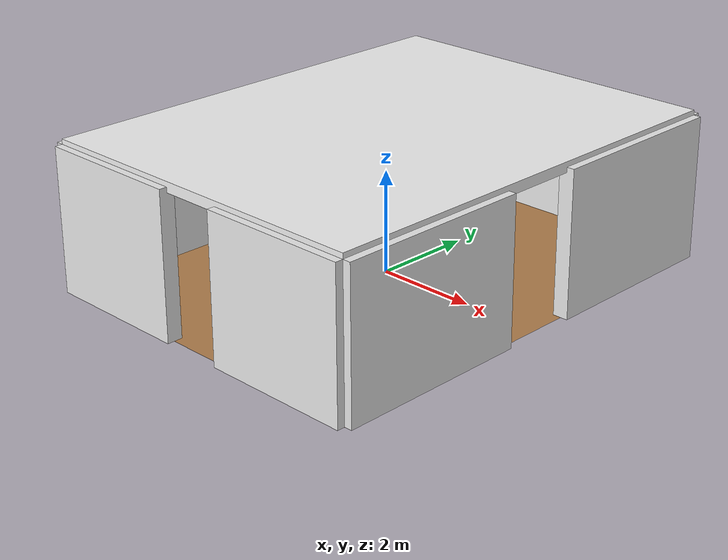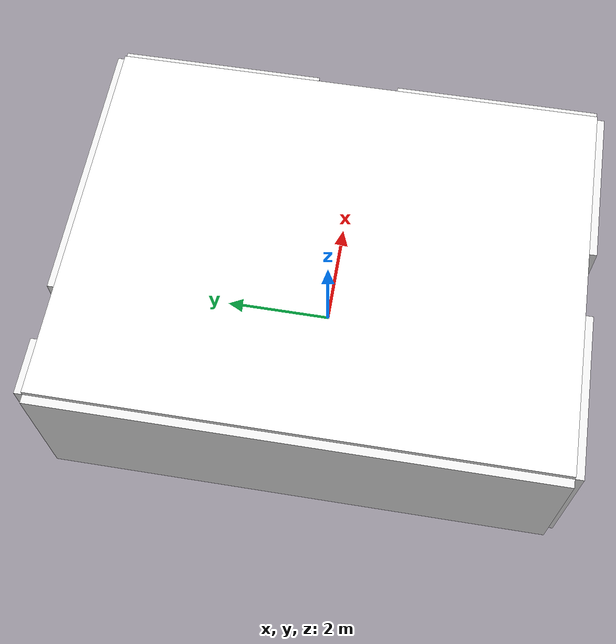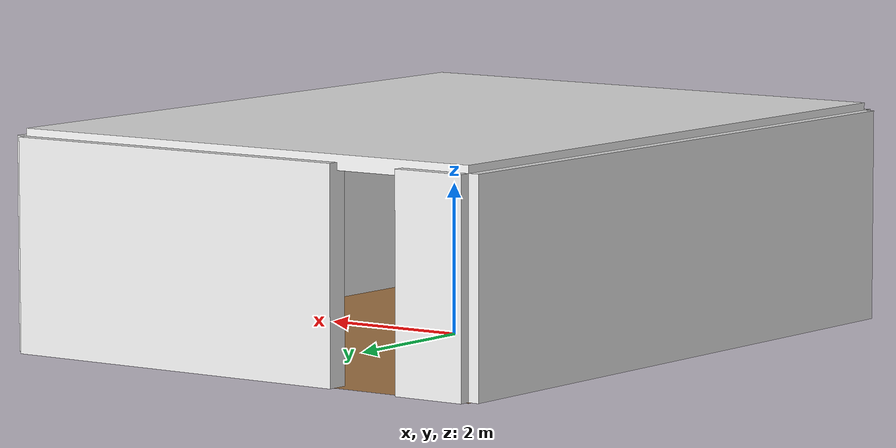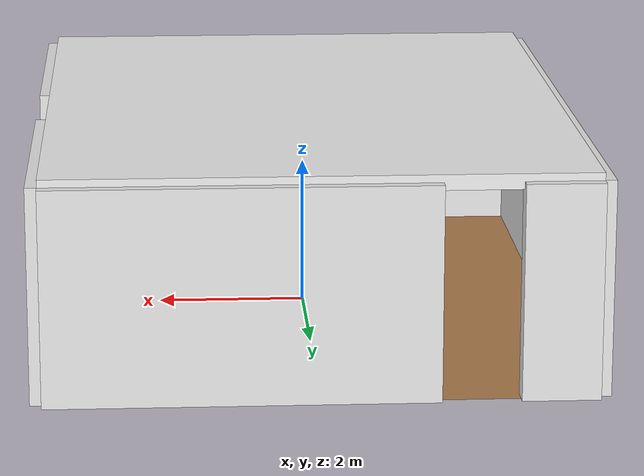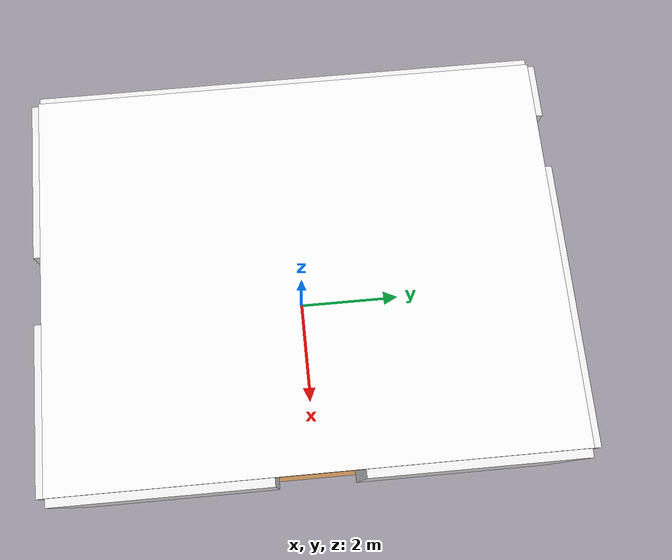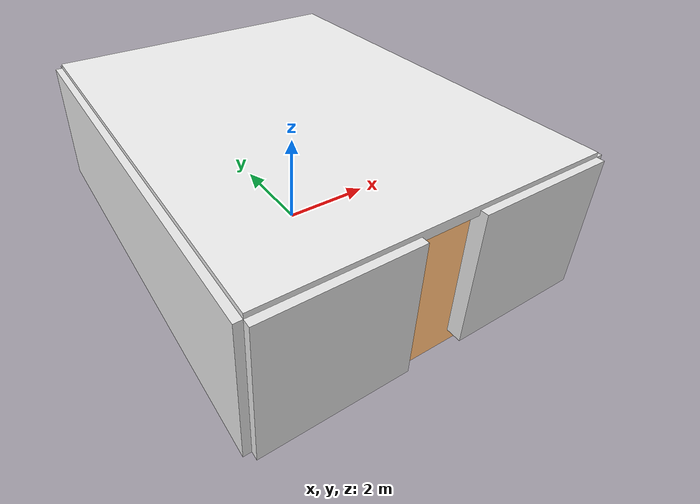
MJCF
<mujoco model="living_room">
  <visual>
    <headlight diffuse="0.6 0.6 0.6" ambient="0.3 0.3 0.3" specular="0 0 0"/>
    <rgba haze="0.15 0.25 0.35 1"/>
    <global azimuth="-120" elevation="-20"/>
  </visual>

  <asset>
    <texture name="wood_floor_tex" type="2d" file="../common/textures/wood_floor.png"/>
    <texture name="white_wall_tex" type="2d" file="../common/textures/white_wall.png"/>

    <material name="floor_material" texture="wood_floor_tex"
              texrepeat="8 8" specular="0.3" shininess="0.2"/>
    <material name="wall_material" texture="white_wall_tex"
              texrepeat="4 4" specular="0.05" shininess="0.01"/>
  </asset>

  <worldbody>
    <!-- Floor -->
    <geom name="floor" type="plane" size="3.5 4.5 0.1"
          pos="0 0 0" material="floor_material" friction="1.0 0.05 0.01"/>

    <!-- North wall with opening -->
    <geom name="wall_north_left" type="box"
          size="0.5 0.15 1.4"
          pos="-3.0 4.5 1.4"
          material="wall_material"/>
    <geom name="wall_north_right" type="box"
          size="2.5 0.15 1.4"
          pos="1.0 4.5 1.4"
          material="wall_material"/>
    <!-- door opening: width=1.0m, offset=-2m -->

    <!-- South wall with opening -->
    <geom name="wall_south_left" type="box"
          size="1.45 0.15 1.4"
          pos="-2.05 -4.5 1.4"
          material="wall_material"/>
    <geom name="wall_south_right" type="box"
          size="1.45 0.15 1.4"
          pos="2.05 -4.5 1.4"
          material="wall_material"/>
    <!-- door opening: width=1.2m, offset=0m -->

    <!-- East wall with opening -->
    <geom name="wall_east_bottom" type="box"
          size="0.15 1.875 1.4"
          pos="3.5 -2.625 1.4"
          material="wall_material"/>
    <geom name="wall_east_top" type="box"
          size="0.15 1.875 1.4"
          pos="3.5 2.625 1.4"
          material="wall_material"/>
    <!-- window opening: width=1.5m, offset=0m -->

    <!-- West wall -->
    <geom name="wall_west" type="box"
          size="0.15 4.5 1.4"
          pos="-3.5 0 1.4"
          material="wall_material"/>

    <!-- Ceiling -->
    <geom name="ceiling" type="box" size="3.5 4.5 0.1"
          pos="0 0 2.8" rgba="0.95 0.95 0.95 1"/>
  </worldbody>
</mujoco>
